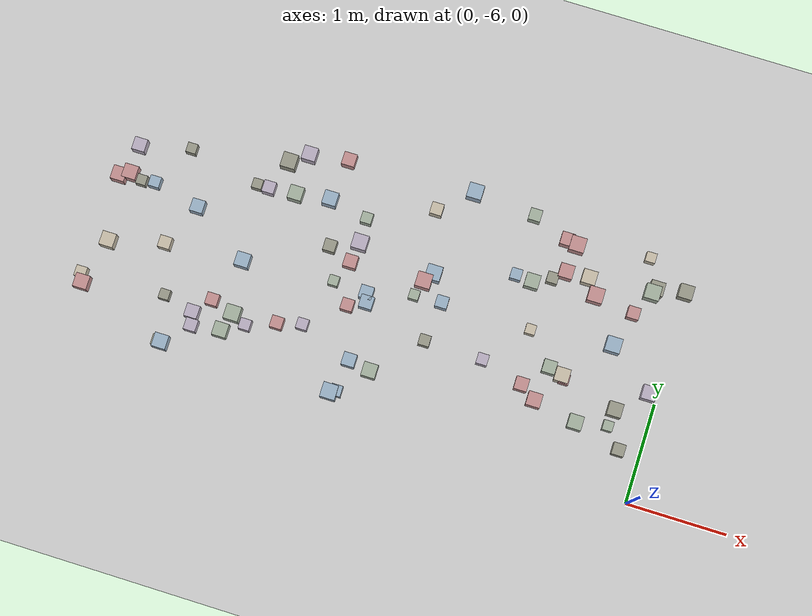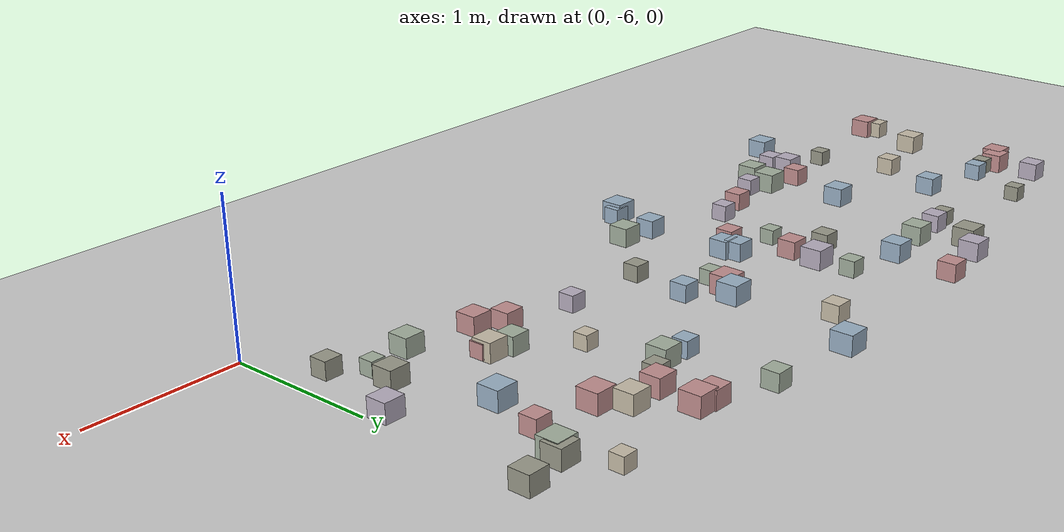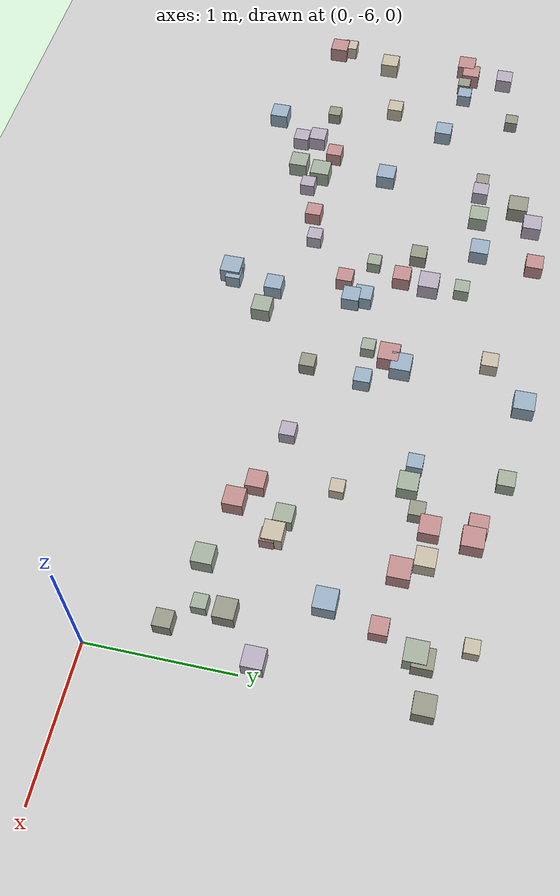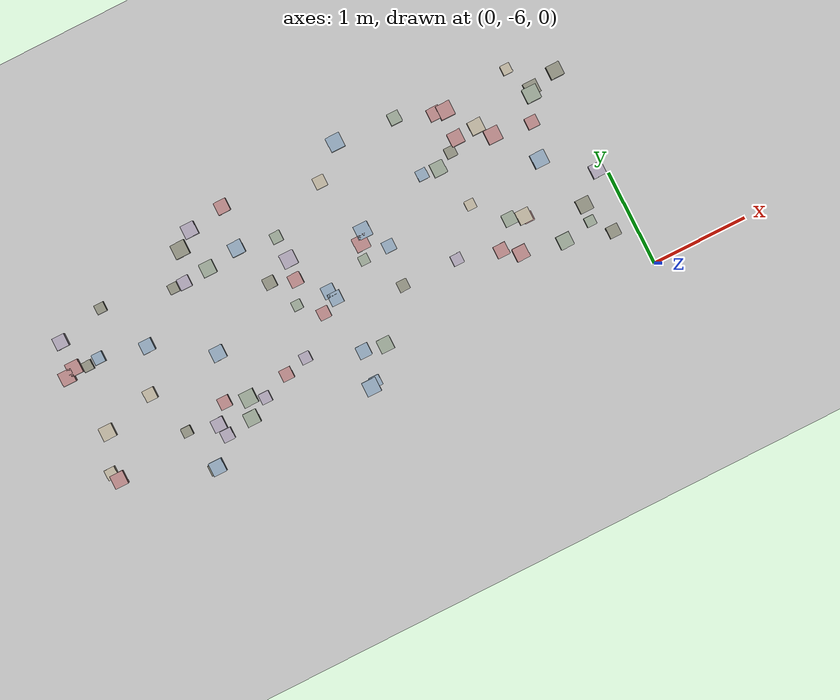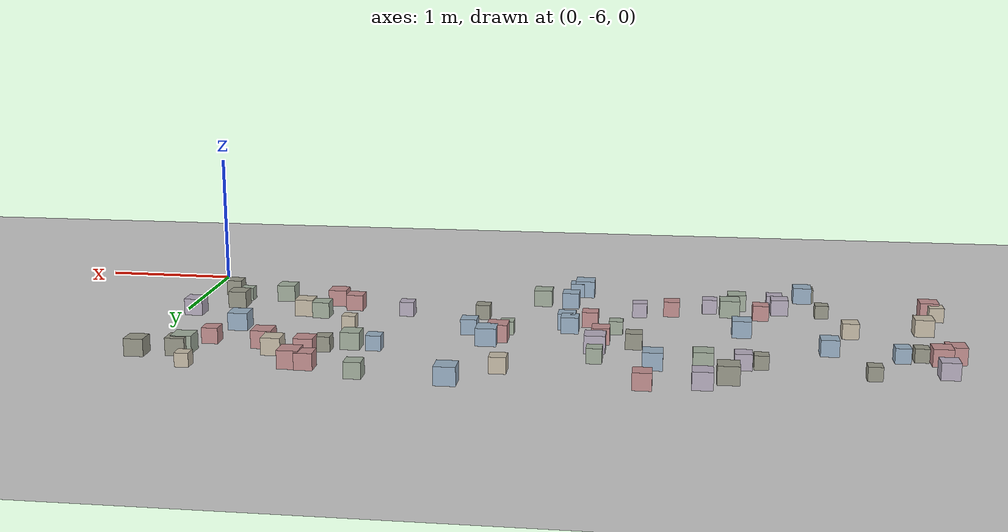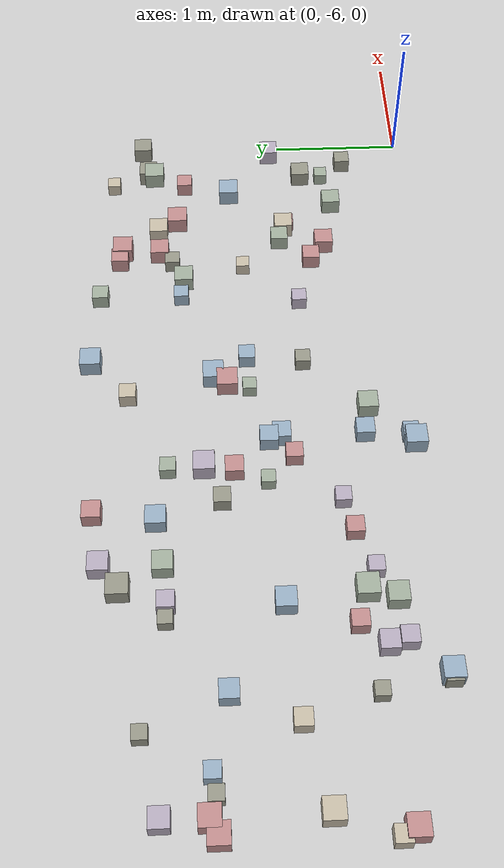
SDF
<sdf version="1.6">
 <world name="small_maze_world">
  <include><uri>model://ground_plane</uri></include>
  <include><uri>model://sun</uri></include>
  <model name="box_13">
   <static>false</static>
   <pose>-3.61 -4.0 0.05 0 0 0</pose>
   <link name="link">
    <inertial>
     <mass>0.2</mass>
     <inertia><ixx>0.001</ixx><iyy>0.001</iyy><izz>0.001</izz><ixy>0</ixy><ixz>0</ixz><iyz>0</iyz></inertia>
    </inertial>
    <collision name="collision"><geometry><box><size>0.14 0.14 0.14</size></box></geometry></collision>
    <visual name="visual">
     <geometry><box><size>0.14 0.14 0.14</size></box></geometry>
     <material><ambient>0.6 0.69 0.77 1</ambient><diffuse>0.6 0.69 0.77 1</diffuse></material>
    </visual>
   </link>
  </model>
  <model name="box_14">
   <static>false</static>
   <pose>-4.75 -5.84 0.05 0 0 0</pose>
   <link name="link">
    <inertial>
     <mass>0.2</mass>
     <inertia><ixx>0.001</ixx><iyy>0.001</iyy><izz>0.001</izz><ixy>0</ixy><ixz>0</ixz><iyz>0</iyz></inertia>
    </inertial>
    <collision name="collision"><geometry><box><size>0.14 0.14 0.14</size></box></geometry></collision>
    <visual name="visual">
     <geometry><box><size>0.14 0.14 0.14</size></box></geometry>
     <material><ambient>0.6 0.69 0.77 1</ambient><diffuse>0.6 0.69 0.77 1</diffuse></material>
    </visual>
   </link>
  </model>
  <model name="box_16">
   <static>false</static>
   <pose>-4.86 -5.39 0.05 0 0 0</pose>
   <link name="link">
    <inertial>
     <mass>0.2</mass>
     <inertia><ixx>0.001</ixx><iyy>0.001</iyy><izz>0.001</izz><ixy>0</ixy><ixz>0</ixz><iyz>0</iyz></inertia>
    </inertial>
    <collision name="collision"><geometry><box><size>0.1 0.1 0.1</size></box></geometry></collision>
    <visual name="visual">
     <geometry><box><size>0.1 0.1 0.1</size></box></geometry>
     <material><ambient>0.6 0.6 0.54 1</ambient><diffuse>0.6 0.6 0.54 1</diffuse></material>
    </visual>
   </link>
  </model>
  <model name="box_26">
   <static>false</static>
   <pose>-0.3 -3.91 0.05 0 0 0</pose>
   <link name="link">
    <inertial>
     <mass>0.2</mass>
     <inertia><ixx>0.001</ixx><iyy>0.001</iyy><izz>0.001</izz><ixy>0</ixy><ixz>0</ixz><iyz>0</iyz></inertia>
    </inertial>
    <collision name="collision"><geometry><box><size>0.14 0.14 0.14</size></box></geometry></collision>
    <visual name="visual">
     <geometry><box><size>0.14 0.14 0.14</size></box></geometry>
     <material><ambient>0.6 0.6 0.54 1</ambient><diffuse>0.6 0.6 0.54 1</diffuse></material>
    </visual>
   </link>
  </model>
  <model name="box_29">
   <static>false</static>
   <pose>-4.22 -4.07 0.05 0 0 0</pose>
   <link name="link">
    <inertial>
     <mass>0.2</mass>
     <inertia><ixx>0.001</ixx><iyy>0.001</iyy><izz>0.001</izz><ixy>0</ixy><ixz>0</ixz><iyz>0</iyz></inertia>
    </inertial>
    <collision name="collision"><geometry><box><size>0.12 0.12 0.12</size></box></geometry></collision>
    <visual name="visual">
     <geometry><box><size>0.12 0.12 0.12</size></box></geometry>
     <material><ambient>0.72 0.68 0.75 1</ambient><diffuse>0.72 0.68 0.75 1</diffuse></material>
    </visual>
   </link>
  </model>
  <model name="box_34">
   <static>false</static>
   <pose>-4.83 -4.46 0.05 0 0 0</pose>
   <link name="link">
    <inertial>
     <mass>0.2</mass>
     <inertia><ixx>0.001</ixx><iyy>0.001</iyy><izz>0.001</izz><ixy>0</ixy><ixz>0</ixz><iyz>0</iyz></inertia>
    </inertial>
    <collision name="collision"><geometry><box><size>0.13 0.13 0.13</size></box></geometry></collision>
    <visual name="visual">
     <geometry><box><size>0.13 0.13 0.13</size></box></geometry>
     <material><ambient>0.6 0.69 0.77 1</ambient><diffuse>0.6 0.69 0.77 1</diffuse></material>
    </visual>
   </link>
  </model>
  <model name="box_41">
   <static>false</static>
   <pose>-4.55 -5.47 0.05 0 0 0</pose>
   <link name="link">
    <inertial>
     <mass>0.2</mass>
     <inertia><ixx>0.001</ixx><iyy>0.001</iyy><izz>0.001</izz><ixy>0</ixy><ixz>0</ixz><iyz>0</iyz></inertia>
    </inertial>
    <collision name="collision"><geometry><box><size>0.13 0.13 0.13</size></box></geometry></collision>
    <visual name="visual">
     <geometry><box><size>0.13 0.13 0.13</size></box></geometry>
     <material><ambient>0.72 0.68 0.75 1</ambient><diffuse>0.72 0.68 0.75 1</diffuse></material>
    </visual>
   </link>
  </model>
  <model name="box_42">
   <static>false</static>
   <pose>-3.55 -3.57 0.05 0 0 0</pose>
   <link name="link">
    <inertial>
     <mass>0.2</mass>
     <inertia><ixx>0.001</ixx><iyy>0.001</iyy><izz>0.001</izz><ixy>0</ixy><ixz>0</ixz><iyz>0</iyz></inertia>
    </inertial>
    <collision name="collision"><geometry><box><size>0.13 0.13 0.13</size></box></geometry></collision>
    <visual name="visual">
     <geometry><box><size>0.13 0.13 0.13</size></box></geometry>
     <material><ambient>0.76 0.56 0.56 1</ambient><diffuse>0.76 0.56 0.56 1</diffuse></material>
    </visual>
   </link>
  </model>
  <model name="box_52">
   <static>false</static>
   <pose>-3.23 -4.54 0.05 0 0 0</pose>
   <link name="link">
    <inertial>
     <mass>0.2</mass>
     <inertia><ixx>0.001</ixx><iyy>0.001</iyy><izz>0.001</izz><ixy>0</ixy><ixz>0</ixz><iyz>0</iyz></inertia>
    </inertial>
    <collision name="collision"><geometry><box><size>0.13 0.13 0.13</size></box></geometry></collision>
    <visual name="visual">
     <geometry><box><size>0.13 0.13 0.13</size></box></geometry>
     <material><ambient>0.76 0.56 0.56 1</ambient><diffuse>0.76 0.56 0.56 1</diffuse></material>
    </visual>
   </link>
  </model>
  <model name="box_54">
   <static>false</static>
   <pose>-4.52 -5.6 0.05 0 0 0</pose>
   <link name="link">
    <inertial>
     <mass>0.2</mass>
     <inertia><ixx>0.001</ixx><iyy>0.001</iyy><izz>0.001</izz><ixy>0</ixy><ixz>0</ixz><iyz>0</iyz></inertia>
    </inertial>
    <collision name="collision"><geometry><box><size>0.12 0.12 0.12</size></box></geometry></collision>
    <visual name="visual">
     <geometry><box><size>0.12 0.12 0.12</size></box></geometry>
     <material><ambient>0.72 0.68 0.75 1</ambient><diffuse>0.72 0.68 0.75 1</diffuse></material>
    </visual>
   </link>
  </model>
  <model name="box_56">
   <static>false</static>
   <pose>-5.67 -4.38 0.05 0 0 0</pose>
   <link name="link">
    <inertial>
     <mass>0.2</mass>
     <inertia><ixx>0.001</ixx><iyy>0.001</iyy><izz>0.001</izz><ixy>0</ixy><ixz>0</ixz><iyz>0</iyz></inertia>
    </inertial>
    <collision name="collision"><geometry><box><size>0.14 0.14 0.14</size></box></geometry></collision>
    <visual name="visual">
     <geometry><box><size>0.14 0.14 0.14</size></box></geometry>
     <material><ambient>0.76 0.56 0.56 1</ambient><diffuse>0.76 0.56 0.56 1</diffuse></material>
    </visual>
   </link>
  </model>
  <model name="box_72">
   <static>false</static>
   <pose>-1.19 -4.01 0.05 0 0 0</pose>
   <link name="link">
    <inertial>
     <mass>0.2</mass>
     <inertia><ixx>0.001</ixx><iyy>0.001</iyy><izz>0.001</izz><ixy>0</ixy><ixz>0</ixz><iyz>0</iyz></inertia>
    </inertial>
    <collision name="collision"><geometry><box><size>0.14 0.14 0.14</size></box></geometry></collision>
    <visual name="visual">
     <geometry><box><size>0.14 0.14 0.14</size></box></geometry>
     <material><ambient>0.76 0.56 0.56 1</ambient><diffuse>0.76 0.56 0.56 1</diffuse></material>
    </visual>
   </link>
  </model>
  <model name="box_74">
   <static>false</static>
   <pose>-2.54 -4.67 0.05 0 0 0</pose>
   <link name="link">
    <inertial>
     <mass>0.2</mass>
     <inertia><ixx>0.001</ixx><iyy>0.001</iyy><izz>0.001</izz><ixy>0</ixy><ixz>0</ixz><iyz>0</iyz></inertia>
    </inertial>
    <collision name="collision"><geometry><box><size>0.1 0.1 0.1</size></box></geometry></collision>
    <visual name="visual">
     <geometry><box><size>0.1 0.1 0.1</size></box></geometry>
     <material><ambient>0.64 0.69 0.62 1</ambient><diffuse>0.64 0.69 0.62 1</diffuse></material>
    </visual>
   </link>
  </model>
  <model name="box_77">
   <static>false</static>
   <pose>-3.2 -4.33 0.05 0 0 0</pose>
   <link name="link">
    <inertial>
     <mass>0.2</mass>
     <inertia><ixx>0.001</ixx><iyy>0.001</iyy><izz>0.001</izz><ixy>0</ixy><ixz>0</ixz><iyz>0</iyz></inertia>
    </inertial>
    <collision name="collision"><geometry><box><size>0.15 0.15 0.15</size></box></geometry></collision>
    <visual name="visual">
     <geometry><box><size>0.15 0.15 0.15</size></box></geometry>
     <material><ambient>0.72 0.68 0.75 1</ambient><diffuse>0.72 0.68 0.75 1</diffuse></material>
    </visual>
   </link>
  </model>
  <model name="box_79">
   <static>false</static>
   <pose>-0.02 -3.86 0.05 0 0 0</pose>
   <link name="link">
    <inertial>
     <mass>0.2</mass>
     <inertia><ixx>0.001</ixx><iyy>0.001</iyy><izz>0.001</izz><ixy>0</ixy><ixz>0</ixz><iyz>0</iyz></inertia>
    </inertial>
    <collision name="collision"><geometry><box><size>0.14 0.14 0.14</size></box></geometry></collision>
    <visual name="visual">
     <geometry><box><size>0.14 0.14 0.14</size></box></geometry>
     <material><ambient>0.6 0.6 0.54 1</ambient><diffuse>0.6 0.6 0.54 1</diffuse></material>
    </visual>
   </link>
  </model>
  <model name="box_80">
   <static>false</static>
   <pose>-1.36 -4.66 0.05 0 0 0</pose>
   <link name="link">
    <inertial>
     <mass>0.2</mass>
     <inertia><ixx>0.001</ixx><iyy>0.001</iyy><izz>0.001</izz><ixy>0</ixy><ixz>0</ixz><iyz>0</iyz></inertia>
    </inertial>
    <collision name="collision"><geometry><box><size>0.1 0.1 0.1</size></box></geometry></collision>
    <visual name="visual">
     <geometry><box><size>0.1 0.1 0.1</size></box></geometry>
     <material><ambient>0.78 0.74 0.66 1</ambient><diffuse>0.78 0.74 0.66 1</diffuse></material>
    </visual>
   </link>
  </model>
  <model name="box_87">
   <static>false</static>
   <pose>-4.24 -4.84 0.05 0 0 0</pose>
   <link name="link">
    <inertial>
     <mass>0.2</mass>
     <inertia><ixx>0.001</ixx><iyy>0.001</iyy><izz>0.001</izz><ixy>0</ixy><ixz>0</ixz><iyz>0</iyz></inertia>
    </inertial>
    <collision name="collision"><geometry><box><size>0.14 0.14 0.14</size></box></geometry></collision>
    <visual name="visual">
     <geometry><box><size>0.14 0.14 0.14</size></box></geometry>
     <material><ambient>0.6 0.69 0.77 1</ambient><diffuse>0.6 0.69 0.77 1</diffuse></material>
    </visual>
   </link>
  </model>
  <model name="box_95">
   <static>false</static>
   <pose>-2.73 -5.51 0.05 0 0 0</pose>
   <link name="link">
    <inertial>
     <mass>0.2</mass>
     <inertia><ixx>0.001</ixx><iyy>0.001</iyy><izz>0.001</izz><ixy>0</ixy><ixz>0</ixz><iyz>0</iyz></inertia>
    </inertial>
    <collision name="collision"><geometry><box><size>0.14 0.14 0.14</size></box></geometry></collision>
    <visual name="visual">
     <geometry><box><size>0.14 0.14 0.14</size></box></geometry>
     <material><ambient>0.64 0.69 0.62 1</ambient><diffuse>0.64 0.69 0.62 1</diffuse></material>
    </visual>
   </link>
  </model>
  <model name="box_98">
   <static>false</static>
   <pose>-4.02 -5.44 0.05 0 0 0</pose>
   <link name="link">
    <inertial>
     <mass>0.2</mass>
     <inertia><ixx>0.001</ixx><iyy>0.001</iyy><izz>0.001</izz><ixy>0</ixy><ixz>0</ixz><iyz>0</iyz></inertia>
    </inertial>
    <collision name="collision"><geometry><box><size>0.11 0.11 0.11</size></box></geometry></collision>
    <visual name="visual">
     <geometry><box><size>0.11 0.11 0.11</size></box></geometry>
     <material><ambient>0.72 0.68 0.75 1</ambient><diffuse>0.72 0.68 0.75 1</diffuse></material>
    </visual>
   </link>
  </model>
  <model name="box_107">
   <static>false</static>
   <pose>-3.13 -4.96 0.05 0 0 0</pose>
   <link name="link">
    <inertial>
     <mass>0.2</mass>
     <inertia><ixx>0.001</ixx><iyy>0.001</iyy><izz>0.001</izz><ixy>0</ixy><ixz>0</ixz><iyz>0</iyz></inertia>
    </inertial>
    <collision name="collision"><geometry><box><size>0.12 0.12 0.12</size></box></geometry></collision>
    <visual name="visual">
     <geometry><box><size>0.12 0.12 0.12</size></box></geometry>
     <material><ambient>0.76 0.56 0.56 1</ambient><diffuse>0.76 0.56 0.56 1</diffuse></material>
    </visual>
   </link>
  </model>
  <model name="box_124">
   <static>false</static>
   <pose>-0.36 -5.17 0.05 0 0 0</pose>
   <link name="link">
    <inertial>
     <mass>0.2</mass>
     <inertia><ixx>0.001</ixx><iyy>0.001</iyy><izz>0.001</izz><ixy>0</ixy><ixz>0</ixz><iyz>0</iyz></inertia>
    </inertial>
    <collision name="collision"><geometry><box><size>0.14 0.14 0.14</size></box></geometry></collision>
    <visual name="visual">
     <geometry><box><size>0.14 0.14 0.14</size></box></geometry>
     <material><ambient>0.6 0.6 0.54 1</ambient><diffuse>0.6 0.6 0.54 1</diffuse></material>
    </visual>
   </link>
  </model>
  <model name="box_127">
   <static>false</static>
   <pose>-5.57 -4.04 0.05 0 0 0</pose>
   <link name="link">
    <inertial>
     <mass>0.2</mass>
     <inertia><ixx>0.001</ixx><iyy>0.001</iyy><izz>0.001</izz><ixy>0</ixy><ixz>0</ixz><iyz>0</iyz></inertia>
    </inertial>
    <collision name="collision"><geometry><box><size>0.13 0.13 0.13</size></box></geometry></collision>
    <visual name="visual">
     <geometry><box><size>0.13 0.13 0.13</size></box></geometry>
     <material><ambient>0.72 0.68 0.75 1</ambient><diffuse>0.72 0.68 0.75 1</diffuse></material>
    </visual>
   </link>
  </model>
  <model name="box_129">
   <static>false</static>
   <pose>-3.33 -4.77 0.05 0 0 0</pose>
   <link name="link">
    <inertial>
     <mass>0.2</mass>
     <inertia><ixx>0.001</ixx><iyy>0.001</iyy><izz>0.001</izz><ixy>0</ixy><ixz>0</ixz><iyz>0</iyz></inertia>
    </inertial>
    <collision name="collision"><geometry><box><size>0.1 0.1 0.1</size></box></geometry></collision>
    <visual name="visual">
     <geometry><box><size>0.1 0.1 0.1</size></box></geometry>
     <material><ambient>0.64 0.69 0.62 1</ambient><diffuse>0.64 0.69 0.62 1</diffuse></material>
    </visual>
   </link>
  </model>
  <model name="box_133">
   <static>false</static>
   <pose>-2.42 -4.41 0.05 0 0 0</pose>
   <link name="link">
    <inertial>
     <mass>0.2</mass>
     <inertia><ixx>0.001</ixx><iyy>0.001</iyy><izz>0.001</izz><ixy>0</ixy><ixz>0</ixz><iyz>0</iyz></inertia>
    </inertial>
    <collision name="collision"><geometry><box><size>0.15 0.15 0.15</size></box></geometry></collision>
    <visual name="visual">
     <geometry><box><size>0.15 0.15 0.15</size></box></geometry>
     <material><ambient>0.6 0.69 0.77 1</ambient><diffuse>0.6 0.69 0.77 1</diffuse></material>
    </visual>
   </link>
  </model>
  <model name="box_135">
   <static>false</static>
   <pose>-5.67 -5.51 0.05 0 0 0</pose>
   <link name="link">
    <inertial>
     <mass>0.2</mass>
     <inertia><ixx>0.001</ixx><iyy>0.001</iyy><izz>0.001</izz><ixy>0</ixy><ixz>0</ixz><iyz>0</iyz></inertia>
    </inertial>
    <collision name="collision"><geometry><box><size>0.14 0.14 0.14</size></box></geometry></collision>
    <visual name="visual">
     <geometry><box><size>0.14 0.14 0.14</size></box></geometry>
     <material><ambient>0.76 0.56 0.56 1</ambient><diffuse>0.76 0.56 0.56 1</diffuse></material>
    </visual>
   </link>
  </model>
  <model name="box_138">
   <static>false</static>
   <pose>-2.31 -5.07 0.05 0 0 0</pose>
   <link name="link">
    <inertial>
     <mass>0.2</mass>
     <inertia><ixx>0.001</ixx><iyy>0.001</iyy><izz>0.001</izz><ixy>0</ixy><ixz>0</ixz><iyz>0</iyz></inertia>
    </inertial>
    <collision name="collision"><geometry><box><size>0.11 0.11 0.11</size></box></geometry></collision>
    <visual name="visual">
     <geometry><box><size>0.11 0.11 0.11</size></box></geometry>
     <material><ambient>0.6 0.6 0.54 1</ambient><diffuse>0.6 0.6 0.54 1</diffuse></material>
    </visual>
   </link>
  </model>
  <model name="box_145">
   <static>false</static>
   <pose>-0.85 -4.15 0.05 0 0 0</pose>
   <link name="link">
    <inertial>
     <mass>0.2</mass>
     <inertia><ixx>0.001</ixx><iyy>0.001</iyy><izz>0.001</izz><ixy>0</ixy><ixz>0</ixz><iyz>0</iyz></inertia>
    </inertial>
    <collision name="collision"><geometry><box><size>0.15 0.15 0.15</size></box></geometry></collision>
    <visual name="visual">
     <geometry><box><size>0.15 0.15 0.15</size></box></geometry>
     <material><ambient>0.76 0.56 0.56 1</ambient><diffuse>0.76 0.56 0.56 1</diffuse></material>
    </visual>
   </link>
  </model>
  <model name="box_157">
   <static>false</static>
   <pose>-0.33 -3.96 0.05 0 0 0</pose>
   <link name="link">
    <inertial>
     <mass>0.2</mass>
     <inertia><ixx>0.001</ixx><iyy>0.001</iyy><izz>0.001</izz><ixy>0</ixy><ixz>0</ixz><iyz>0</iyz></inertia>
    </inertial>
    <collision name="collision"><geometry><box><size>0.15 0.15 0.15</size></box></geometry></collision>
    <visual name="visual">
     <geometry><box><size>0.15 0.15 0.15</size></box></geometry>
     <material><ambient>0.64 0.69 0.62 1</ambient><diffuse>0.64 0.69 0.62 1</diffuse></material>
    </visual>
   </link>
  </model>
  <model name="box_161">
   <static>false</static>
   <pose>-1.72 -5.08 0.05 0 0 0</pose>
   <link name="link">
    <inertial>
     <mass>0.2</mass>
     <inertia><ixx>0.001</ixx><iyy>0.001</iyy><izz>0.001</izz><ixy>0</ixy><ixz>0</ixz><iyz>0</iyz></inertia>
    </inertial>
    <collision name="collision"><geometry><box><size>0.11 0.11 0.11</size></box></geometry></collision>
    <visual name="visual">
     <geometry><box><size>0.11 0.11 0.11</size></box></geometry>
     <material><ambient>0.72 0.68 0.75 1</ambient><diffuse>0.72 0.68 0.75 1</diffuse></material>
    </visual>
   </link>
  </model>
  <model name="box_168">
   <static>false</static>
   <pose>-1.27 -3.7 0.05 0 0 0</pose>
   <link name="link">
    <inertial>
     <mass>0.2</mass>
     <inertia><ixx>0.001</ixx><iyy>0.001</iyy><izz>0.001</izz><ixy>0</ixy><ixz>0</ixz><iyz>0</iyz></inertia>
    </inertial>
    <collision name="collision"><geometry><box><size>0.13 0.13 0.13</size></box></geometry></collision>
    <visual name="visual">
     <geometry><box><size>0.13 0.13 0.13</size></box></geometry>
     <material><ambient>0.76 0.56 0.56 1</ambient><diffuse>0.76 0.56 0.56 1</diffuse></material>
    </visual>
   </link>
  </model>
  <model name="box_169">
   <static>false</static>
   <pose>-1.13 -5.31 0.05 0 0 0</pose>
   <link name="link">
    <inertial>
     <mass>0.2</mass>
     <inertia><ixx>0.001</ixx><iyy>0.001</iyy><izz>0.001</izz><ixy>0</ixy><ixz>0</ixz><iyz>0</iyz></inertia>
    </inertial>
    <collision name="collision"><geometry><box><size>0.14 0.14 0.14</size></box></geometry></collision>
    <visual name="visual">
     <geometry><box><size>0.14 0.14 0.14</size></box></geometry>
     <material><ambient>0.76 0.56 0.56 1</ambient><diffuse>0.76 0.56 0.56 1</diffuse></material>
    </visual>
   </link>
  </model>
  <model name="box_177">
   <static>false</static>
   <pose>-1.29 -5.2 0.05 0 0 0</pose>
   <link name="link">
    <inertial>
     <mass>0.2</mass>
     <inertia><ixx>0.001</ixx><iyy>0.001</iyy><izz>0.001</izz><ixy>0</ixy><ixz>0</ixz><iyz>0</iyz></inertia>
    </inertial>
    <collision name="collision"><geometry><box><size>0.13 0.13 0.13</size></box></geometry></collision>
    <visual name="visual">
     <geometry><box><size>0.13 0.13 0.13</size></box></geometry>
     <material><ambient>0.76 0.56 0.56 1</ambient><diffuse>0.76 0.56 0.56 1</diffuse></material>
    </visual>
   </link>
  </model>
  <model name="box_193">
   <static>false</static>
   <pose>-1.08 -4.96 0.05 0 0 0</pose>
   <link name="link">
    <inertial>
     <mass>0.2</mass>
     <inertia><ixx>0.001</ixx><iyy>0.001</iyy><izz>0.001</izz><ixy>0</ixy><ixz>0</ixz><iyz>0</iyz></inertia>
    </inertial>
    <collision name="collision"><geometry><box><size>0.13 0.13 0.13</size></box></geometry></collision>
    <visual name="visual">
     <geometry><box><size>0.13 0.13 0.13</size></box></geometry>
     <material><ambient>0.64 0.69 0.62 1</ambient><diffuse>0.64 0.69 0.62 1</diffuse></material>
    </visual>
   </link>
  </model>
  <model name="box_194">
   <static>false</static>
   <pose>-5.44 -4.37 0.05 0 0 0</pose>
   <link name="link">
    <inertial>
     <mass>0.2</mass>
     <inertia><ixx>0.001</ixx><iyy>0.001</iyy><izz>0.001</izz><ixy>0</ixy><ixz>0</ixz><iyz>0</iyz></inertia>
    </inertial>
    <collision name="collision"><geometry><box><size>0.1 0.1 0.1</size></box></geometry></collision>
    <visual name="visual">
     <geometry><box><size>0.1 0.1 0.1</size></box></geometry>
     <material><ambient>0.6 0.6 0.54 1</ambient><diffuse>0.6 0.6 0.54 1</diffuse></material>
    </visual>
   </link>
  </model>
  <model name="box_203">
   <static>false</static>
   <pose>-5.57 -4.33 0.05 0 0 0</pose>
   <link name="link">
    <inertial>
     <mass>0.2</mass>
     <inertia><ixx>0.001</ixx><iyy>0.001</iyy><izz>0.001</izz><ixy>0</ixy><ixz>0</ixz><iyz>0</iyz></inertia>
    </inertial>
    <collision name="collision"><geometry><box><size>0.14 0.14 0.14</size></box></geometry></collision>
    <visual name="visual">
     <geometry><box><size>0.14 0.14 0.14</size></box></geometry>
     <material><ambient>0.76 0.56 0.56 1</ambient><diffuse>0.76 0.56 0.56 1</diffuse></material>
    </visual>
   </link>
  </model>
  <model name="box_204">
   <static>false</static>
   <pose>-2.95 -5.47 0.05 0 0 0</pose>
   <link name="link">
    <inertial>
     <mass>0.2</mass>
     <inertia><ixx>0.001</ixx><iyy>0.001</iyy><izz>0.001</izz><ixy>0</ixy><ixz>0</ixz><iyz>0</iyz></inertia>
    </inertial>
    <collision name="collision"><geometry><box><size>0.13 0.13 0.13</size></box></geometry></collision>
    <visual name="visual">
     <geometry><box><size>0.13 0.13 0.13</size></box></geometry>
     <material><ambient>0.6 0.69 0.77 1</ambient><diffuse>0.6 0.69 0.77 1</diffuse></material>
    </visual>
   </link>
  </model>
  <model name="box_206">
   <static>false</static>
   <pose>-1.65 -4.18 0.05 0 0 0</pose>
   <link name="link">
    <inertial>
     <mass>0.2</mass>
     <inertia><ixx>0.001</ixx><iyy>0.001</iyy><izz>0.001</izz><ixy>0</ixy><ixz>0</ixz><iyz>0</iyz></inertia>
    </inertial>
    <collision name="collision"><geometry><box><size>0.11 0.11 0.11</size></box></geometry></collision>
    <visual name="visual">
     <geometry><box><size>0.11 0.11 0.11</size></box></geometry>
     <material><ambient>0.6 0.69 0.77 1</ambient><diffuse>0.6 0.69 0.77 1</diffuse></material>
    </visual>
   </link>
  </model>
  <model name="box_209">
   <static>false</static>
   <pose>-2.49 -4.51 0.05 0 0 0</pose>
   <link name="link">
    <inertial>
     <mass>0.2</mass>
     <inertia><ixx>0.001</ixx><iyy>0.001</iyy><izz>0.001</izz><ixy>0</ixy><ixz>0</ixz><iyz>0</iyz></inertia>
    </inertial>
    <collision name="collision"><geometry><box><size>0.15 0.15 0.15</size></box></geometry></collision>
    <visual name="visual">
     <geometry><box><size>0.15 0.15 0.15</size></box></geometry>
     <material><ambient>0.76 0.56 0.56 1</ambient><diffuse>0.76 0.56 0.56 1</diffuse></material>
    </visual>
   </link>
  </model>
  <model name="box_222">
   <static>false</static>
   <pose>-0.45 -4.21 0.05 0 0 0</pose>
   <link name="link">
    <inertial>
     <mass>0.2</mass>
     <inertia><ixx>0.001</ixx><iyy>0.001</iyy><izz>0.001</izz><ixy>0</ixy><ixz>0</ixz><iyz>0</iyz></inertia>
    </inertial>
    <collision name="collision"><geometry><box><size>0.12 0.12 0.12</size></box></geometry></collision>
    <visual name="visual">
     <geometry><box><size>0.12 0.12 0.12</size></box></geometry>
     <material><ambient>0.76 0.56 0.56 1</ambient><diffuse>0.76 0.56 0.56 1</diffuse></material>
    </visual>
   </link>
  </model>
  <model name="box_226">
   <static>false</static>
   <pose>-0.94 -5.0 0.05 0 0 0</pose>
   <link name="link">
    <inertial>
     <mass>0.2</mass>
     <inertia><ixx>0.001</ixx><iyy>0.001</iyy><izz>0.001</izz><ixy>0</ixy><ixz>0</ixz><iyz>0</iyz></inertia>
    </inertial>
    <collision name="collision"><geometry><box><size>0.14 0.14 0.14</size></box></geometry></collision>
    <visual name="visual">
     <geometry><box><size>0.14 0.14 0.14</size></box></geometry>
     <material><ambient>0.78 0.74 0.66 1</ambient><diffuse>0.78 0.74 0.66 1</diffuse></material>
    </visual>
   </link>
  </model>
  <model name="box_236">
   <static>false</static>
   <pose>-3.49 -5.27 0.05 0 0 0</pose>
   <link name="link">
    <inertial>
     <mass>0.2</mass>
     <inertia><ixx>0.001</ixx><iyy>0.001</iyy><izz>0.001</izz><ixy>0</ixy><ixz>0</ixz><iyz>0</iyz></inertia>
    </inertial>
    <collision name="collision"><geometry><box><size>0.11 0.11 0.11</size></box></geometry></collision>
    <visual name="visual">
     <geometry><box><size>0.11 0.11 0.11</size></box></geometry>
     <material><ambient>0.72 0.68 0.75 1</ambient><diffuse>0.72 0.68 0.75 1</diffuse></material>
    </visual>
   </link>
  </model>
  <model name="box_242">
   <static>false</static>
   <pose>-3.94 -3.63 0.05 0 0 0</pose>
   <link name="link">
    <inertial>
     <mass>0.2</mass>
     <inertia><ixx>0.001</ixx><iyy>0.001</iyy><izz>0.001</izz><ixy>0</ixy><ixz>0</ixz><iyz>0</iyz></inertia>
    </inertial>
    <collision name="collision"><geometry><box><size>0.14 0.14 0.14</size></box></geometry></collision>
    <visual name="visual">
     <geometry><box><size>0.14 0.14 0.14</size></box></geometry>
     <material><ambient>0.72 0.68 0.75 1</ambient><diffuse>0.72 0.68 0.75 1</diffuse></material>
    </visual>
   </link>
  </model>
  <model name="box_247">
   <static>false</static>
   <pose>-4.34 -4.07 0.05 0 0 0</pose>
   <link name="link">
    <inertial>
     <mass>0.2</mass>
     <inertia><ixx>0.001</ixx><iyy>0.001</iyy><izz>0.001</izz><ixy>0</ixy><ixz>0</ixz><iyz>0</iyz></inertia>
    </inertial>
    <collision name="collision"><geometry><box><size>0.1 0.1 0.1</size></box></geometry></collision>
    <visual name="visual">
     <geometry><box><size>0.1 0.1 0.1</size></box></geometry>
     <material><ambient>0.6 0.6 0.54 1</ambient><diffuse>0.6 0.6 0.54 1</diffuse></material>
    </visual>
   </link>
  </model>
  <model name="box_252">
   <static>false</static>
   <pose>-5.31 -4.35 0.05 0 0 0</pose>
   <link name="link">
    <inertial>
     <mass>0.2</mass>
     <inertia><ixx>0.001</ixx><iyy>0.001</iyy><izz>0.001</izz><ixy>0</ixy><ixz>0</ixz><iyz>0</iyz></inertia>
    </inertial>
    <collision name="collision"><geometry><box><size>0.11 0.11 0.11</size></box></geometry></collision>
    <visual name="visual">
     <geometry><box><size>0.11 0.11 0.11</size></box></geometry>
     <material><ambient>0.6 0.69 0.77 1</ambient><diffuse>0.6 0.69 0.77 1</diffuse></material>
    </visual>
   </link>
  </model>
  <model name="box_257">
   <static>false</static>
   <pose>-3.04 -5.82 0.05 0 0 0</pose>
   <link name="link">
    <inertial>
     <mass>0.2</mass>
     <inertia><ixx>0.001</ixx><iyy>0.001</iyy><izz>0.001</izz><ixy>0</ixy><ixz>0</ixz><iyz>0</iyz></inertia>
    </inertial>
    <collision name="collision"><geometry><box><size>0.15 0.15 0.15</size></box></geometry></collision>
    <visual name="visual">
     <geometry><box><size>0.15 0.15 0.15</size></box></geometry>
     <material><ambient>0.6 0.69 0.77 1</ambient><diffuse>0.6 0.69 0.77 1</diffuse></material>
    </visual>
   </link>
  </model>
  <model name="box_267">
   <static>false</static>
   <pose>-0.91 -5.03 0.05 0 0 0</pose>
   <link name="link">
    <inertial>
     <mass>0.2</mass>
     <inertia><ixx>0.001</ixx><iyy>0.001</iyy><izz>0.001</izz><ixy>0</ixy><ixz>0</ixz><iyz>0</iyz></inertia>
    </inertial>
    <collision name="collision"><geometry><box><size>0.1 0.1 0.1</size></box></geometry></collision>
    <visual name="visual">
     <geometry><box><size>0.1 0.1 0.1</size></box></geometry>
     <material><ambient>0.76 0.56 0.56 1</ambient><diffuse>0.76 0.56 0.56 1</diffuse></material>
    </visual>
   </link>
  </model>
  <model name="box_276">
   <static>false</static>
   <pose>-0.09 -4.92 0.05 0 0 0</pose>
   <link name="link">
    <inertial>
     <mass>0.2</mass>
     <inertia><ixx>0.001</ixx><iyy>0.001</iyy><izz>0.001</izz><ixy>0</ixy><ixz>0</ixz><iyz>0</iyz></inertia>
    </inertial>
    <collision name="collision"><geometry><box><size>0.14 0.14 0.14</size></box></geometry></collision>
    <visual name="visual">
     <geometry><box><size>0.14 0.14 0.14</size></box></geometry>
     <material><ambient>0.72 0.68 0.75 1</ambient><diffuse>0.72 0.68 0.75 1</diffuse></material>
    </visual>
   </link>
  </model>
  <model name="box_278">
   <static>false</static>
   <pose>-5.71 -5.42 0.05 0 0 0</pose>
   <link name="link">
    <inertial>
     <mass>0.2</mass>
     <inertia><ixx>0.001</ixx><iyy>0.001</iyy><izz>0.001</izz><ixy>0</ixy><ixz>0</ixz><iyz>0</iyz></inertia>
    </inertial>
    <collision name="collision"><geometry><box><size>0.11 0.11 0.11</size></box></geometry></collision>
    <visual name="visual">
     <geometry><box><size>0.11 0.11 0.11</size></box></geometry>
     <material><ambient>0.78 0.74 0.66 1</ambient><diffuse>0.78 0.74 0.66 1</diffuse></material>
    </visual>
   </link>
  </model>
  <model name="box_279">
   <static>false</static>
   <pose>-0.69 -5.4 0.05 0 0 0</pose>
   <link name="link">
    <inertial>
     <mass>0.2</mass>
     <inertia><ixx>0.001</ixx><iyy>0.001</iyy><izz>0.001</izz><ixy>0</ixy><ixz>0</ixz><iyz>0</iyz></inertia>
    </inertial>
    <collision name="collision"><geometry><box><size>0.14 0.14 0.14</size></box></geometry></collision>
    <visual name="visual">
     <geometry><box><size>0.14 0.14 0.14</size></box></geometry>
     <material><ambient>0.64 0.69 0.62 1</ambient><diffuse>0.64 0.69 0.62 1</diffuse></material>
    </visual>
   </link>
  </model>
  <model name="box_281">
   <static>false</static>
   <pose>-1.3 -4.11 0.05 0 0 0</pose>
   <link name="link">
    <inertial>
     <mass>0.2</mass>
     <inertia><ixx>0.001</ixx><iyy>0.001</iyy><izz>0.001</izz><ixy>0</ixy><ixz>0</ixz><iyz>0</iyz></inertia>
    </inertial>
    <collision name="collision"><geometry><box><size>0.11 0.11 0.11</size></box></geometry></collision>
    <visual name="visual">
     <geometry><box><size>0.11 0.11 0.11</size></box></geometry>
     <material><ambient>0.6 0.6 0.54 1</ambient><diffuse>0.6 0.6 0.54 1</diffuse></material>
    </visual>
   </link>
  </model>
  <model name="box_282">
   <static>false</static>
   <pose>-1.64 -3.56 0.05 0 0 0</pose>
   <link name="link">
    <inertial>
     <mass>0.2</mass>
     <inertia><ixx>0.001</ixx><iyy>0.001</iyy><izz>0.001</izz><ixy>0</ixy><ixz>0</ixz><iyz>0</iyz></inertia>
    </inertial>
    <collision name="collision"><geometry><box><size>0.12 0.12 0.12</size></box></geometry></collision>
    <visual name="visual">
     <geometry><box><size>0.12 0.12 0.12</size></box></geometry>
     <material><ambient>0.64 0.69 0.62 1</ambient><diffuse>0.64 0.69 0.62 1</diffuse></material>
    </visual>
   </link>
  </model>
  <model name="box_286">
   <static>false</static>
   <pose>-3.73 -5.33 0.05 0 0 0</pose>
   <link name="link">
    <inertial>
     <mass>0.2</mass>
     <inertia><ixx>0.001</ixx><iyy>0.001</iyy><izz>0.001</izz><ixy>0</ixy><ixz>0</ixz><iyz>0</iyz></inertia>
    </inertial>
    <collision name="collision"><geometry><box><size>0.12 0.12 0.12</size></box></geometry></collision>
    <visual name="visual">
     <geometry><box><size>0.12 0.12 0.12</size></box></geometry>
     <material><ambient>0.76 0.56 0.56 1</ambient><diffuse>0.76 0.56 0.56 1</diffuse></material>
    </visual>
   </link>
  </model>
  <model name="box_295">
   <static>false</static>
   <pose>-0.38 -5.34 0.05 0 0 0</pose>
   <link name="link">
    <inertial>
     <mass>0.2</mass>
     <inertia><ixx>0.001</ixx><iyy>0.001</iyy><izz>0.001</izz><ixy>0</ixy><ixz>0</ixz><iyz>0</iyz></inertia>
    </inertial>
    <collision name="collision"><geometry><box><size>0.1 0.1 0.1</size></box></geometry></collision>
    <visual name="visual">
     <geometry><box><size>0.1 0.1 0.1</size></box></geometry>
     <material><ambient>0.64 0.69 0.62 1</ambient><diffuse>0.64 0.69 0.62 1</diffuse></material>
    </visual>
   </link>
  </model>
  <model name="box_302">
   <static>false</static>
   <pose>-1.16 -3.72 0.05 0 0 0</pose>
   <link name="link">
    <inertial>
     <mass>0.2</mass>
     <inertia><ixx>0.001</ixx><iyy>0.001</iyy><izz>0.001</izz><ixy>0</ixy><ixz>0</ixz><iyz>0</iyz></inertia>
    </inertial>
    <collision name="collision"><geometry><box><size>0.15 0.15 0.15</size></box></geometry></collision>
    <visual name="visual">
     <geometry><box><size>0.15 0.15 0.15</size></box></geometry>
     <material><ambient>0.76 0.56 0.56 1</ambient><diffuse>0.76 0.56 0.56 1</diffuse></material>
    </visual>
   </link>
  </model>
  <model name="box_305">
   <static>false</static>
   <pose>-5.07 -3.92 0.05 0 0 0</pose>
   <link name="link">
    <inertial>
     <mass>0.2</mass>
     <inertia><ixx>0.001</ixx><iyy>0.001</iyy><izz>0.001</izz><ixy>0</ixy><ixz>0</ixz><iyz>0</iyz></inertia>
    </inertial>
    <collision name="collision"><geometry><box><size>0.1 0.1 0.1</size></box></geometry></collision>
    <visual name="visual">
     <geometry><box><size>0.1 0.1 0.1</size></box></geometry>
     <material><ambient>0.6 0.6 0.54 1</ambient><diffuse>0.6 0.6 0.54 1</diffuse></material>
    </visual>
   </link>
  </model>
  <model name="box_306">
   <static>false</static>
   <pose>-2.96 -4.88 0.05 0 0 0</pose>
   <link name="link">
    <inertial>
     <mass>0.2</mass>
     <inertia><ixx>0.001</ixx><iyy>0.001</iyy><izz>0.001</izz><ixy>0</ixy><ixz>0</ixz><iyz>0</iyz></inertia>
    </inertial>
    <collision name="collision"><geometry><box><size>0.13 0.13 0.13</size></box></geometry></collision>
    <visual name="visual">
     <geometry><box><size>0.13 0.13 0.13</size></box></geometry>
     <material><ambient>0.6 0.69 0.77 1</ambient><diffuse>0.6 0.69 0.77 1</diffuse></material>
    </visual>
   </link>
  </model>
  <model name="box_313">
   <static>false</static>
   <pose>-0.55 -4.57 0.05 0 0 0</pose>
   <link name="link">
    <inertial>
     <mass>0.2</mass>
     <inertia><ixx>0.001</ixx><iyy>0.001</iyy><izz>0.001</izz><ixy>0</ixy><ixz>0</ixz><iyz>0</iyz></inertia>
    </inertial>
    <collision name="collision"><geometry><box><size>0.15 0.15 0.15</size></box></geometry></collision>
    <visual name="visual">
     <geometry><box><size>0.15 0.15 0.15</size></box></geometry>
     <material><ambient>0.6 0.69 0.77 1</ambient><diffuse>0.6 0.69 0.77 1</diffuse></material>
    </visual>
   </link>
  </model>
  <model name="box_314">
   <static>false</static>
   <pose>-4.11 -3.76 0.05 0 0 0</pose>
   <link name="link">
    <inertial>
     <mass>0.2</mass>
     <inertia><ixx>0.001</ixx><iyy>0.001</iyy><izz>0.001</izz><ixy>0</ixy><ixz>0</ixz><iyz>0</iyz></inertia>
    </inertial>
    <collision name="collision"><geometry><box><size>0.15 0.15 0.15</size></box></geometry></collision>
    <visual name="visual">
     <geometry><box><size>0.15 0.15 0.15</size></box></geometry>
     <material><ambient>0.6 0.6 0.54 1</ambient><diffuse>0.6 0.6 0.54 1</diffuse></material>
    </visual>
   </link>
  </model>
  <model name="box_316">
   <static>false</static>
   <pose>-2.27 -3.51 0.05 0 0 0</pose>
   <link name="link">
    <inertial>
     <mass>0.2</mass>
     <inertia><ixx>0.001</ixx><iyy>0.001</iyy><izz>0.001</izz><ixy>0</ixy><ixz>0</ixz><iyz>0</iyz></inertia>
    </inertial>
    <collision name="collision"><geometry><box><size>0.15 0.15 0.15</size></box></geometry></collision>
    <visual name="visual">
     <geometry><box><size>0.15 0.15 0.15</size></box></geometry>
     <material><ambient>0.6 0.69 0.77 1</ambient><diffuse>0.6 0.69 0.77 1</diffuse></material>
    </visual>
   </link>
  </model>
  <model name="box_321">
   <static>false</static>
   <pose>-3.21 -4.08 0.05 0 0 0</pose>
   <link name="link">
    <inertial>
     <mass>0.2</mass>
     <inertia><ixx>0.001</ixx><iyy>0.001</iyy><izz>0.001</izz><ixy>0</ixy><ixz>0</ixz><iyz>0</iyz></inertia>
    </inertial>
    <collision name="collision"><geometry><box><size>0.11 0.11 0.11</size></box></geometry></collision>
    <visual name="visual">
     <geometry><box><size>0.11 0.11 0.11</size></box></geometry>
     <material><ambient>0.64 0.69 0.62 1</ambient><diffuse>0.64 0.69 0.62 1</diffuse></material>
    </visual>
   </link>
  </model>
  <model name="box_325">
   <static>false</static>
   <pose>-2.98 -5.79 0.05 0 0 0</pose>
   <link name="link">
    <inertial>
     <mass>0.2</mass>
     <inertia><ixx>0.001</ixx><iyy>0.001</iyy><izz>0.001</izz><ixy>0</ixy><ixz>0</ixz><iyz>0</iyz></inertia>
    </inertial>
    <collision name="collision"><geometry><box><size>0.11 0.11 0.11</size></box></geometry></collision>
    <visual name="visual">
     <geometry><box><size>0.11 0.11 0.11</size></box></geometry>
     <material><ambient>0.6 0.69 0.77 1</ambient><diffuse>0.6 0.69 0.77 1</diffuse></material>
    </visual>
   </link>
  </model>
  <model name="box_336">
   <static>false</static>
   <pose>-5.02 -4.9 0.05 0 0 0</pose>
   <link name="link">
    <inertial>
     <mass>0.2</mass>
     <inertia><ixx>0.001</ixx><iyy>0.001</iyy><izz>0.001</izz><ixy>0</ixy><ixz>0</ixz><iyz>0</iyz></inertia>
    </inertial>
    <collision name="collision"><geometry><box><size>0.12 0.12 0.12</size></box></geometry></collision>
    <visual name="visual">
     <geometry><box><size>0.12 0.12 0.12</size></box></geometry>
     <material><ambient>0.78 0.74 0.66 1</ambient><diffuse>0.78 0.74 0.66 1</diffuse></material>
    </visual>
   </link>
  </model>
  <model name="box_350">
   <static>false</static>
   <pose>-0.96 -4.0 0.05 0 0 0</pose>
   <link name="link">
    <inertial>
     <mass>0.2</mass>
     <inertia><ixx>0.001</ixx><iyy>0.001</iyy><izz>0.001</izz><ixy>0</ixy><ixz>0</ixz><iyz>0</iyz></inertia>
    </inertial>
    <collision name="collision"><geometry><box><size>0.14 0.14 0.14</size></box></geometry></collision>
    <visual name="visual">
     <geometry><box><size>0.14 0.14 0.14</size></box></geometry>
     <material><ambient>0.78 0.74 0.66 1</ambient><diffuse>0.78 0.74 0.66 1</diffuse></material>
    </visual>
   </link>
  </model>
  <model name="box_366">
   <static>false</static>
   <pose>-3.47 -4.45 0.05 0 0 0</pose>
   <link name="link">
    <inertial>
     <mass>0.2</mass>
     <inertia><ixx>0.001</ixx><iyy>0.001</iyy><izz>0.001</izz><ixy>0</ixy><ixz>0</ixz><iyz>0</iyz></inertia>
    </inertial>
    <collision name="collision"><geometry><box><size>0.12 0.12 0.12</size></box></geometry></collision>
    <visual name="visual">
     <geometry><box><size>0.12 0.12 0.12</size></box></geometry>
     <material><ambient>0.6 0.6 0.54 1</ambient><diffuse>0.6 0.6 0.54 1</diffuse></material>
    </visual>
   </link>
  </model>
  <model name="box_371">
   <static>false</static>
   <pose>-4.17 -5.37 0.05 0 0 0</pose>
   <link name="link">
    <inertial>
     <mass>0.2</mass>
     <inertia><ixx>0.001</ixx><iyy>0.001</iyy><izz>0.001</izz><ixy>0</ixy><ixz>0</ixz><iyz>0</iyz></inertia>
    </inertial>
    <collision name="collision"><geometry><box><size>0.15 0.15 0.15</size></box></geometry></collision>
    <visual name="visual">
     <geometry><box><size>0.15 0.15 0.15</size></box></geometry>
     <material><ambient>0.64 0.69 0.62 1</ambient><diffuse>0.64 0.69 0.62 1</diffuse></material>
    </visual>
   </link>
  </model>
  <model name="box_373">
   <static>false</static>
   <pose>-0.44 -3.63 0.05 0 0 0</pose>
   <link name="link">
    <inertial>
     <mass>0.2</mass>
     <inertia><ixx>0.001</ixx><iyy>0.001</iyy><izz>0.001</izz><ixy>0</ixy><ixz>0</ixz><iyz>0</iyz></inertia>
    </inertial>
    <collision name="collision"><geometry><box><size>0.1 0.1 0.1</size></box></geometry></collision>
    <visual name="visual">
     <geometry><box><size>0.1 0.1 0.1</size></box></geometry>
     <material><ambient>0.78 0.74 0.66 1</ambient><diffuse>0.78 0.74 0.66 1</diffuse></material>
    </visual>
   </link>
  </model>
  <model name="box_381">
   <static>false</static>
   <pose>-4.78 -5.84 0.05 0 0 0</pose>
   <link name="link">
    <inertial>
     <mass>0.2</mass>
     <inertia><ixx>0.001</ixx><iyy>0.001</iyy><izz>0.001</izz><ixy>0</ixy><ixz>0</ixz><iyz>0</iyz></inertia>
    </inertial>
    <collision name="collision"><geometry><box><size>0.11 0.11 0.11</size></box></geometry></collision>
    <visual name="visual">
     <geometry><box><size>0.11 0.11 0.11</size></box></geometry>
     <material><ambient>0.6 0.6 0.54 1</ambient><diffuse>0.6 0.6 0.54 1</diffuse></material>
    </visual>
   </link>
  </model>
  <model name="box_396">
   <static>false</static>
   <pose>-3.95 -4.05 0.05 0 0 0</pose>
   <link name="link">
    <inertial>
     <mass>0.2</mass>
     <inertia><ixx>0.001</ixx><iyy>0.001</iyy><izz>0.001</izz><ixy>0</ixy><ixz>0</ixz><iyz>0</iyz></inertia>
    </inertial>
    <collision name="collision"><geometry><box><size>0.14 0.14 0.14</size></box></geometry></collision>
    <visual name="visual">
     <geometry><box><size>0.14 0.14 0.14</size></box></geometry>
     <material><ambient>0.64 0.69 0.62 1</ambient><diffuse>0.64 0.69 0.62 1</diffuse></material>
    </visual>
   </link>
  </model>
  <model name="box_402">
   <static>false</static>
   <pose>-2.58 -3.79 0.05 0 0 0</pose>
   <link name="link">
    <inertial>
     <mass>0.2</mass>
     <inertia><ixx>0.001</ixx><iyy>0.001</iyy><izz>0.001</izz><ixy>0</ixy><ixz>0</ixz><iyz>0</iyz></inertia>
    </inertial>
    <collision name="collision"><geometry><box><size>0.12 0.12 0.12</size></box></geometry></collision>
    <visual name="visual">
     <geometry><box><size>0.12 0.12 0.12</size></box></geometry>
     <material><ambient>0.78 0.74 0.66 1</ambient><diffuse>0.78 0.74 0.66 1</diffuse></material>
    </visual>
   </link>
  </model>
  <model name="box_415">
   <static>false</static>
   <pose>-0.22 -5.53 0.05 0 0 0</pose>
   <link name="link">
    <inertial>
     <mass>0.2</mass>
     <inertia><ixx>0.001</ixx><iyy>0.001</iyy><izz>0.001</izz><ixy>0</ixy><ixz>0</ixz><iyz>0</iyz></inertia>
    </inertial>
    <collision name="collision"><geometry><box><size>0.12 0.12 0.12</size></box></geometry></collision>
    <visual name="visual">
     <geometry><box><size>0.12 0.12 0.12</size></box></geometry>
     <material><ambient>0.6 0.6 0.54 1</ambient><diffuse>0.6 0.6 0.54 1</diffuse></material>
    </visual>
   </link>
  </model>
  <model name="box_428">
   <static>false</static>
   <pose>-4.23 -5.56 0.05 0 0 0</pose>
   <link name="link">
    <inertial>
     <mass>0.2</mass>
     <inertia><ixx>0.001</ixx><iyy>0.001</iyy><izz>0.001</izz><ixy>0</ixy><ixz>0</ixz><iyz>0</iyz></inertia>
    </inertial>
    <collision name="collision"><geometry><box><size>0.14 0.14 0.14</size></box></geometry></collision>
    <visual name="visual">
     <geometry><box><size>0.14 0.14 0.14</size></box></geometry>
     <material><ambient>0.64 0.69 0.62 1</ambient><diffuse>0.64 0.69 0.62 1</diffuse></material>
    </visual>
   </link>
  </model>
  <model name="box_430">
   <static>false</static>
   <pose>-4.4 -5.3 0.05 0 0 0</pose>
   <link name="link">
    <inertial>
     <mass>0.2</mass>
     <inertia><ixx>0.001</ixx><iyy>0.001</iyy><izz>0.001</izz><ixy>0</ixy><ixz>0</ixz><iyz>0</iyz></inertia>
    </inertial>
    <collision name="collision"><geometry><box><size>0.12 0.12 0.12</size></box></geometry></collision>
    <visual name="visual">
     <geometry><box><size>0.12 0.12 0.12</size></box></geometry>
     <material><ambient>0.76 0.56 0.56 1</ambient><diffuse>0.76 0.56 0.56 1</diffuse></material>
    </visual>
   </link>
  </model>
  <model name="box_434">
   <static>false</static>
   <pose>-5.56 -5.04 0.05 0 0 0</pose>
   <link name="link">
    <inertial>
     <mass>0.2</mass>
     <inertia><ixx>0.001</ixx><iyy>0.001</iyy><izz>0.001</izz><ixy>0</ixy><ixz>0</ixz><iyz>0</iyz></inertia>
    </inertial>
    <collision name="collision"><geometry><box><size>0.14 0.14 0.14</size></box></geometry></collision>
    <visual name="visual">
     <geometry><box><size>0.14 0.14 0.14</size></box></geometry>
     <material><ambient>0.78 0.74 0.66 1</ambient><diffuse>0.78 0.74 0.66 1</diffuse></material>
    </visual>
   </link>
  </model>
  <model name="box_440">
   <static>false</static>
   <pose>-1.48 -4.2 0.05 0 0 0</pose>
   <link name="link">
    <inertial>
     <mass>0.2</mass>
     <inertia><ixx>0.001</ixx><iyy>0.001</iyy><izz>0.001</izz><ixy>0</ixy><ixz>0</ixz><iyz>0</iyz></inertia>
    </inertial>
    <collision name="collision"><geometry><box><size>0.14 0.14 0.14</size></box></geometry></collision>
    <visual name="visual">
     <geometry><box><size>0.14 0.14 0.14</size></box></geometry>
     <material><ambient>0.64 0.69 0.62 1</ambient><diffuse>0.64 0.69 0.62 1</diffuse></material>
    </visual>
   </link>
  </model>
  <model name="box_442">
   <static>false</static>
   <pose>-2.99 -4.79 0.05 0 0 0</pose>
   <link name="link">
    <inertial>
     <mass>0.2</mass>
     <inertia><ixx>0.001</ixx><iyy>0.001</iyy><izz>0.001</izz><ixy>0</ixy><ixz>0</ixz><iyz>0</iyz></inertia>
    </inertial>
    <collision name="collision"><geometry><box><size>0.13 0.13 0.13</size></box></geometry></collision>
    <visual name="visual">
     <geometry><box><size>0.13 0.13 0.13</size></box></geometry>
     <material><ambient>0.6 0.69 0.77 1</ambient><diffuse>0.6 0.69 0.77 1</diffuse></material>
    </visual>
   </link>
  </model>
  <model name="box_447">
   <static>false</static>
   <pose>-2.26 -4.66 0.05 0 0 0</pose>
   <link name="link">
    <inertial>
     <mass>0.2</mass>
     <inertia><ixx>0.001</ixx><iyy>0.001</iyy><izz>0.001</izz><ixy>0</ixy><ixz>0</ixz><iyz>0</iyz></inertia>
    </inertial>
    <collision name="collision"><geometry><box><size>0.12 0.12 0.12</size></box></geometry></collision>
    <visual name="visual">
     <geometry><box><size>0.12 0.12 0.12</size></box></geometry>
     <material><ambient>0.6 0.69 0.77 1</ambient><diffuse>0.6 0.69 0.77 1</diffuse></material>
    </visual>
   </link>
  </model>
 </world>
</sdf>
